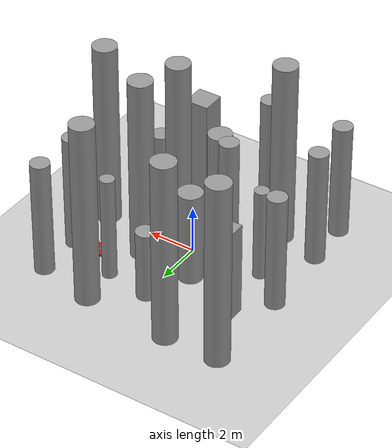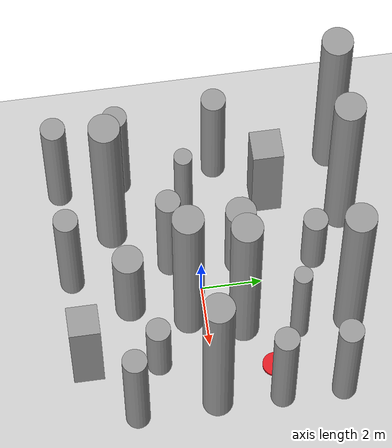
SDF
<sdf version="1.7">
 <world name="default">
  <light name="sun" type="directional">
   <pose>0 0 10 0 -0 0</pose>
   <diffuse>0.8 0.8 0.8 1</diffuse>
   <specular>0.2 0.2 0.2 1</specular>
   <attenuation>
    <range>1000</range>
    <constant>0.9</constant>
    <linear>0.01</linear>
    <quadratic>0.001</quadratic>
   </attenuation>
   <direction>-0.5 0.1 -0.9</direction>
   <spot><inner_angle>0</inner_angle><outer_angle>0</outer_angle><falloff>0</falloff></spot>
  </light>
  <model name="ground_plane">
   <static>1</static>
   <link name="link">
    <collision name="collision">
     <geometry><plane><normal>0 0 1</normal><size>100 100</size></plane></geometry>
     <surface><friction><ode><mu>100</mu><mu2>50</mu2></ode></friction></surface>
    </collision>
    <visual name="visual">
     <cast_shadows>0</cast_shadows>
     <geometry><plane><normal>0 0 1</normal><size>100 100</size></plane></geometry>
     <material>
      <script><uri>file://media/materials/scripts/gazebo.material</uri><name>Gazebo/Grey</name></script>
     </material>
    </visual>
   </link>
  </model>
  <gravity>0 0 -9.8</gravity>
  <magnetic_field>6e-06 2.3e-05 -4.2e-05</magnetic_field>
  <atmosphere type="adiabatic"/>
  <physics type="ode">
   <max_step_size>0.001</max_step_size>
   <real_time_factor>1</real_time_factor>
   <real_time_update_rate>1000</real_time_update_rate>
  </physics>
  <scene><ambient>0.4 0.4 0.4 1</ambient><background>0.7 0.7 0.7 1</background><shadows>1</shadows></scene>
  <audio><device>default</device></audio>
  <spherical_coordinates>
   <surface_model>EARTH_WGS84</surface_model>
   <latitude_deg>0</latitude_deg>
   <longitude_deg>0</longitude_deg>
   <elevation>0</elevation>
   <heading_deg>0</heading_deg>
  </spherical_coordinates>
  <model name="obstalces2">
   <link name="link_11">
    <inertial>
     <mass>1</mass>
     <inertia><ixx>166667</ixx><ixy>0</ixy><ixz>0</ixz><iyy>166667</iyy><iyz>0</iyz><izz>166667</izz></inertia>
    </inertial>
    <pose>-3.03778 2.53975 0 0 -0 0</pose>
    <visual name="visual">
     <geometry><box><size>1 1 4</size></box></geometry>
     <material>
      <lighting>1</lighting>
      <script><uri>file://media/materials/scripts/gazebo.material</uri><name>Gazebo/Grey</name></script>
      <shader type="pixel"><normal_map>__default__</normal_map></shader>
      <ambient>0.3 0.3 0.3 1</ambient>
      <diffuse>0.7 0.7 0.7 1</diffuse>
      <specular>0.01 0.01 0.01 1</specular>
      <emissive>0 0 0 1</emissive>
     </material>
    </visual>
    <collision name="collision">
     <geometry><box><size>1 1 4</size></box></geometry>
     <surface>
      <friction>
       <ode><mu>1</mu><mu2>1</mu2><fdir1>0 0 0</fdir1><slip1>0</slip1><slip2>0</slip2></ode>
       <torsional>
        <coefficient>1</coefficient>
        <patch_radius>0</patch_radius>
        <surface_radius>0</surface_radius>
        <use_patch_radius>1</use_patch_radius>
        <ode><slip>0</slip></ode>
       </torsional>
      </friction>
      <bounce><restitution_coefficient>0</restitution_coefficient><threshold>1e+06</threshold></bounce>
      <contact>
       <collide_without_contact>0</collide_without_contact>
       <collide_without_contact_bitmask>1</collide_without_contact_bitmask>
       <collide_bitmask>1</collide_bitmask>
       <ode>
        <soft_cfm>0</soft_cfm>
        <soft_erp>0.2</soft_erp>
        <kp>1e+13</kp>
        <kd>1</kd>
        <max_vel>0.01</max_vel>
        <min_depth>0</min_depth>
       </ode>
       <bullet>
        <split_impulse>1</split_impulse>
        <split_impulse_penetration_threshold>-0.01</split_impulse_penetration_threshold>
        <soft_cfm>0</soft_cfm>
        <soft_erp>0.2</soft_erp>
        <kp>1e+13</kp>
        <kd>1</kd>
       </bullet>
      </contact>
     </surface>
    </collision>
   </link>
   <link name="link_12">
    <inertial>
     <mass>1</mass>
     <inertia><ixx>145833</ixx><ixy>0</ixy><ixz>0</ixz><iyy>145833</iyy><iyz>0</iyz><izz>125</izz></inertia>
    </inertial>
    <pose>2.64639 -1.73365 0 0 -0 0</pose>
    <visual name="visual">
     <geometry><cylinder><radius>0.4</radius><length>3</length></cylinder></geometry>
     <material>
      <lighting>1</lighting>
      <script><uri>file://media/materials/scripts/gazebo.material</uri><name>Gazebo/Grey</name></script>
      <shader type="pixel"><normal_map>__default__</normal_map></shader>
      <ambient>0.3 0.3 0.3 1</ambient>
      <diffuse>0.7 0.7 0.7 1</diffuse>
      <specular>0.01 0.01 0.01 1</specular>
      <emissive>0 0 0 1</emissive>
     </material>
    </visual>
    <collision name="collision">
     <geometry><cylinder><radius>0.4</radius><length>3</length></cylinder></geometry>
     <surface>
      <friction>
       <ode><mu>1</mu><mu2>1</mu2><fdir1>0 0 0</fdir1><slip1>0</slip1><slip2>0</slip2></ode>
       <torsional>
        <coefficient>1</coefficient>
        <patch_radius>0</patch_radius>
        <surface_radius>0</surface_radius>
        <use_patch_radius>1</use_patch_radius>
        <ode><slip>0</slip></ode>
       </torsional>
      </friction>
      <bounce><restitution_coefficient>0</restitution_coefficient><threshold>1e+06</threshold></bounce>
      <contact>
       <collide_without_contact>0</collide_without_contact>
       <collide_without_contact_bitmask>1</collide_without_contact_bitmask>
       <collide_bitmask>1</collide_bitmask>
       <ode>
        <soft_cfm>0</soft_cfm>
        <soft_erp>0.2</soft_erp>
        <kp>1e+13</kp>
        <kd>1</kd>
        <max_vel>0.01</max_vel>
        <min_depth>0</min_depth>
       </ode>
       <bullet>
        <split_impulse>1</split_impulse>
        <split_impulse_penetration_threshold>-0.01</split_impulse_penetration_threshold>
        <soft_cfm>0</soft_cfm>
        <soft_erp>0.2</soft_erp>
        <kp>1e+13</kp>
        <kd>1</kd>
       </bullet>
      </contact>
     </surface>
    </collision>
   </link>
   <link name="link_14">
    <inertial>
     <mass>1</mass>
     <inertia><ixx>145833</ixx><ixy>0</ixy><ixz>0</ixz><iyy>145833</iyy><iyz>0</iyz><izz>125</izz></inertia>
    </inertial>
    <pose>0.344724 -2.40039 0 0 -0 0</pose>
    <visual name="visual">
     <geometry><cylinder><radius>0.5</radius><length>4</length></cylinder></geometry>
     <material>
      <lighting>1</lighting>
      <script><uri>file://media/materials/scripts/gazebo.material</uri><name>Gazebo/Grey</name></script>
      <shader type="pixel"><normal_map>__default__</normal_map></shader>
      <ambient>0.3 0.3 0.3 1</ambient>
      <diffuse>0.7 0.7 0.7 1</diffuse>
      <specular>0.01 0.01 0.01 1</specular>
      <emissive>0 0 0 1</emissive>
     </material>
    </visual>
    <collision name="collision">
     <geometry><cylinder><radius>0.5</radius><length>4</length></cylinder></geometry>
     <surface>
      <friction>
       <ode><mu>1</mu><mu2>1</mu2><fdir1>0 0 0</fdir1><slip1>0</slip1><slip2>0</slip2></ode>
       <torsional>
        <coefficient>1</coefficient>
        <patch_radius>0</patch_radius>
        <surface_radius>0</surface_radius>
        <use_patch_radius>1</use_patch_radius>
        <ode><slip>0</slip></ode>
       </torsional>
      </friction>
      <bounce><restitution_coefficient>0</restitution_coefficient><threshold>1e+06</threshold></bounce>
      <contact>
       <collide_without_contact>0</collide_without_contact>
       <collide_without_contact_bitmask>1</collide_without_contact_bitmask>
       <collide_bitmask>1</collide_bitmask>
       <ode>
        <soft_cfm>0</soft_cfm>
        <soft_erp>0.2</soft_erp>
        <kp>1e+13</kp>
        <kd>1</kd>
        <max_vel>0.01</max_vel>
        <min_depth>0</min_depth>
       </ode>
       <bullet>
        <split_impulse>1</split_impulse>
        <split_impulse_penetration_threshold>-0.01</split_impulse_penetration_threshold>
        <soft_cfm>0</soft_cfm>
        <soft_erp>0.2</soft_erp>
        <kp>1e+13</kp>
        <kd>1</kd>
       </bullet>
      </contact>
     </surface>
    </collision>
   </link>
   <link name="link_16">
    <inertial>
     <mass>1</mass>
     <inertia><ixx>145833</ixx><ixy>0</ixy><ixz>0</ixz><iyy>145833</iyy><iyz>0</iyz><izz>125</izz></inertia>
    </inertial>
    <pose>-0.815528 1.39211 0 0 -0 0</pose>
    <visual name="visual">
     <geometry><cylinder><radius>0.5</radius><length>4</length></cylinder></geometry>
     <material>
      <lighting>1</lighting>
      <script><uri>file://media/materials/scripts/gazebo.material</uri><name>Gazebo/Grey</name></script>
      <shader type="pixel"><normal_map>__default__</normal_map></shader>
      <ambient>0.3 0.3 0.3 1</ambient>
      <diffuse>0.7 0.7 0.7 1</diffuse>
      <specular>0.01 0.01 0.01 1</specular>
      <emissive>0 0 0 1</emissive>
     </material>
    </visual>
    <collision name="collision">
     <geometry><cylinder><radius>0.5</radius><length>4</length></cylinder></geometry>
     <surface>
      <friction>
       <ode><mu>1</mu><mu2>1</mu2><fdir1>0 0 0</fdir1><slip1>0</slip1><slip2>0</slip2></ode>
       <torsional>
        <coefficient>1</coefficient>
        <patch_radius>0</patch_radius>
        <surface_radius>0</surface_radius>
        <use_patch_radius>1</use_patch_radius>
        <ode><slip>0</slip></ode>
       </torsional>
      </friction>
      <bounce><restitution_coefficient>0</restitution_coefficient><threshold>1e+06</threshold></bounce>
      <contact>
       <collide_without_contact>0</collide_without_contact>
       <collide_without_contact_bitmask>1</collide_without_contact_bitmask>
       <collide_bitmask>1</collide_bitmask>
       <ode>
        <soft_cfm>0</soft_cfm>
        <soft_erp>0.2</soft_erp>
        <kp>1e+13</kp>
        <kd>1</kd>
        <max_vel>0.01</max_vel>
        <min_depth>0</min_depth>
       </ode>
       <bullet>
        <split_impulse>1</split_impulse>
        <split_impulse_penetration_threshold>-0.01</split_impulse_penetration_threshold>
        <soft_cfm>0</soft_cfm>
        <soft_erp>0.2</soft_erp>
        <kp>1e+13</kp>
        <kd>1</kd>
       </bullet>
      </contact>
     </surface>
    </collision>
   </link>
   <link name="link_17">
    <inertial>
     <mass>1</mass>
     <inertia><ixx>145833</ixx><ixy>0</ixy><ixz>0</ixz><iyy>145833</iyy><iyz>0</iyz><izz>125</izz></inertia>
    </inertial>
    <pose>-0.417772 3.76581 0 0 -0 0</pose>
    <visual name="visual">
     <geometry><cylinder><radius>0.4</radius><length>3</length></cylinder></geometry>
     <material>
      <lighting>1</lighting>
      <script><uri>file://media/materials/scripts/gazebo.material</uri><name>Gazebo/Grey</name></script>
      <shader type="pixel"><normal_map>__default__</normal_map></shader>
      <ambient>0.3 0.3 0.3 1</ambient>
      <diffuse>0.7 0.7 0.7 1</diffuse>
      <specular>0.01 0.01 0.01 1</specular>
      <emissive>0 0 0 1</emissive>
     </material>
    </visual>
    <collision name="collision">
     <geometry><cylinder><radius>0.4</radius><length>3</length></cylinder></geometry>
     <surface>
      <friction>
       <ode><mu>1</mu><mu2>1</mu2><fdir1>0 0 0</fdir1><slip1>0</slip1><slip2>0</slip2></ode>
       <torsional>
        <coefficient>1</coefficient>
        <patch_radius>0</patch_radius>
        <surface_radius>0</surface_radius>
        <use_patch_radius>1</use_patch_radius>
        <ode><slip>0</slip></ode>
       </torsional>
      </friction>
      <bounce><restitution_coefficient>0</restitution_coefficient><threshold>1e+06</threshold></bounce>
      <contact>
       <collide_without_contact>0</collide_without_contact>
       <collide_without_contact_bitmask>1</collide_without_contact_bitmask>
       <collide_bitmask>1</collide_bitmask>
       <ode>
        <soft_cfm>0</soft_cfm>
        <soft_erp>0.2</soft_erp>
        <kp>1e+13</kp>
        <kd>1</kd>
        <max_vel>0.01</max_vel>
        <min_depth>0</min_depth>
       </ode>
       <bullet>
        <split_impulse>1</split_impulse>
        <split_impulse_penetration_threshold>-0.01</split_impulse_penetration_threshold>
        <soft_cfm>0</soft_cfm>
        <soft_erp>0.2</soft_erp>
        <kp>1e+13</kp>
        <kd>1</kd>
       </bullet>
      </contact>
     </surface>
    </collision>
   </link>
   <link name="link_18">
    <inertial>
     <mass>1</mass>
     <inertia><ixx>166667</ixx><ixy>0</ixy><ixz>0</ixz><iyy>166667</iyy><iyz>0</iyz><izz>166667</izz></inertia>
    </inertial>
    <pose>2.22537 -4.04815 0 0 -0 0</pose>
    <visual name="visual">
     <geometry><box><size>1 1 4</size></box></geometry>
     <material>
      <lighting>1</lighting>
      <script><uri>file://media/materials/scripts/gazebo.material</uri><name>Gazebo/Grey</name></script>
      <shader type="pixel"><normal_map>__default__</normal_map></shader>
      <ambient>0.3 0.3 0.3 1</ambient>
      <diffuse>0.7 0.7 0.7 1</diffuse>
      <specular>0.01 0.01 0.01 1</specular>
      <emissive>0 0 0 1</emissive>
     </material>
    </visual>
    <collision name="collision">
     <geometry><box><size>1 1 4</size></box></geometry>
     <surface>
      <friction>
       <ode><mu>1</mu><mu2>1</mu2><fdir1>0 0 0</fdir1><slip1>0</slip1><slip2>0</slip2></ode>
       <torsional>
        <coefficient>1</coefficient>
        <patch_radius>0</patch_radius>
        <surface_radius>0</surface_radius>
        <use_patch_radius>1</use_patch_radius>
        <ode><slip>0</slip></ode>
       </torsional>
      </friction>
      <bounce><restitution_coefficient>0</restitution_coefficient><threshold>1e+06</threshold></bounce>
      <contact>
       <collide_without_contact>0</collide_without_contact>
       <collide_without_contact_bitmask>1</collide_without_contact_bitmask>
       <collide_bitmask>1</collide_bitmask>
       <ode>
        <soft_cfm>0</soft_cfm>
        <soft_erp>0.2</soft_erp>
        <kp>1e+13</kp>
        <kd>1</kd>
        <max_vel>0.01</max_vel>
        <min_depth>0</min_depth>
       </ode>
       <bullet>
        <split_impulse>1</split_impulse>
        <split_impulse_penetration_threshold>-0.01</split_impulse_penetration_threshold>
        <soft_cfm>0</soft_cfm>
        <soft_erp>0.2</soft_erp>
        <kp>1e+13</kp>
        <kd>1</kd>
       </bullet>
      </contact>
     </surface>
    </collision>
   </link>
   <link name="link_3">
    <inertial>
     <mass>1</mass>
     <inertia><ixx>145833</ixx><ixy>0</ixy><ixz>0</ixz><iyy>145833</iyy><iyz>0</iyz><izz>125</izz></inertia>
    </inertial>
    <pose>-2.97254 -0.183383 0 0 -0 0</pose>
    <visual name="visual">
     <geometry><cylinder><radius>0.3</radius><length>4</length></cylinder></geometry>
     <material>
      <lighting>1</lighting>
      <script><uri>file://media/materials/scripts/gazebo.material</uri><name>Gazebo/Grey</name></script>
      <shader type="pixel"><normal_map>__default__</normal_map></shader>
      <ambient>0.3 0.3 0.3 1</ambient>
      <diffuse>0.7 0.7 0.7 1</diffuse>
      <specular>0.01 0.01 0.01 1</specular>
      <emissive>0 0 0 1</emissive>
     </material>
    </visual>
    <collision name="collision">
     <geometry><cylinder><radius>0.3</radius><length>4</length></cylinder></geometry>
     <surface>
      <friction>
       <ode><mu>1</mu><mu2>1</mu2><fdir1>0 0 0</fdir1><slip1>0</slip1><slip2>0</slip2></ode>
       <torsional>
        <coefficient>1</coefficient>
        <patch_radius>0</patch_radius>
        <surface_radius>0</surface_radius>
        <use_patch_radius>1</use_patch_radius>
        <ode><slip>0</slip></ode>
       </torsional>
      </friction>
      <bounce><restitution_coefficient>0</restitution_coefficient><threshold>1e+06</threshold></bounce>
      <contact>
       <collide_without_contact>0</collide_without_contact>
       <collide_without_contact_bitmask>1</collide_without_contact_bitmask>
       <collide_bitmask>1</collide_bitmask>
       <ode>
        <soft_cfm>0</soft_cfm>
        <soft_erp>0.2</soft_erp>
        <kp>1e+13</kp>
        <kd>1</kd>
        <max_vel>0.01</max_vel>
        <min_depth>0</min_depth>
       </ode>
       <bullet>
        <split_impulse>1</split_impulse>
        <split_impulse_penetration_threshold>-0.01</split_impulse_penetration_threshold>
        <soft_cfm>0</soft_cfm>
        <soft_erp>0.2</soft_erp>
        <kp>1e+13</kp>
        <kd>1</kd>
       </bullet>
      </contact>
     </surface>
    </collision>
   </link>
   <link name="link_6">
    <inertial>
     <mass>1</mass>
     <inertia><ixx>145833</ixx><ixy>0</ixy><ixz>0</ixz><iyy>145833</iyy><iyz>0</iyz><izz>125</izz></inertia>
    </inertial>
    <pose>1.8493 2.9833 0 0 -0 0</pose>
    <visual name="visual">
     <geometry><cylinder><radius>0.3</radius><length>5</length></cylinder></geometry>
     <material>
      <lighting>1</lighting>
      <script><uri>file://media/materials/scripts/gazebo.material</uri><name>Gazebo/Grey</name></script>
      <shader type="pixel"><normal_map>__default__</normal_map></shader>
      <ambient>0.3 0.3 0.3 1</ambient>
      <diffuse>0.7 0.7 0.7 1</diffuse>
      <specular>0.01 0.01 0.01 1</specular>
      <emissive>0 0 0 1</emissive>
     </material>
    </visual>
    <collision name="collision">
     <geometry><cylinder><radius>0.3</radius><length>5</length></cylinder></geometry>
     <surface>
      <friction>
       <ode><mu>1</mu><mu2>1</mu2><fdir1>0 0 0</fdir1><slip1>0</slip1><slip2>0</slip2></ode>
       <torsional>
        <coefficient>1</coefficient>
        <patch_radius>0</patch_radius>
        <surface_radius>0</surface_radius>
        <use_patch_radius>1</use_patch_radius>
        <ode><slip>0</slip></ode>
       </torsional>
      </friction>
      <bounce><restitution_coefficient>0</restitution_coefficient><threshold>1e+06</threshold></bounce>
      <contact>
       <collide_without_contact>0</collide_without_contact>
       <collide_without_contact_bitmask>1</collide_without_contact_bitmask>
       <collide_bitmask>1</collide_bitmask>
       <ode>
        <soft_cfm>0</soft_cfm>
        <soft_erp>0.2</soft_erp>
        <kp>1e+13</kp>
        <kd>1</kd>
        <max_vel>0.01</max_vel>
        <min_depth>0</min_depth>
       </ode>
       <bullet>
        <split_impulse>1</split_impulse>
        <split_impulse_penetration_threshold>-0.01</split_impulse_penetration_threshold>
        <soft_cfm>0</soft_cfm>
        <soft_erp>0.2</soft_erp>
        <kp>1e+13</kp>
        <kd>1</kd>
       </bullet>
      </contact>
     </surface>
    </collision>
   </link>
   <static>0</static>
   <pose>-6e-06 -0 2.00002 -1e-06 -4e-06 0</pose>
  </model>
  <model name="unit_cylinder">
   <link name="link">
    <inertial>
     <mass>10</mass>
     <inertia><ixx>21.2333</ixx><ixy>0</ixy><ixz>0</ixz><iyy>21.2333</iyy><iyz>0</iyz><izz>0.8</izz></inertia>
    </inertial>
    <visual name="visual">
     <geometry><cylinder><radius>0.4</radius><length>5</length></cylinder></geometry>
     <material>
      <script><name>Gazebo/Grey</name><uri>file://media/materials/scripts/gazebo.material</uri></script>
      <shader type="pixel"><normal_map>__default__</normal_map></shader>
      <ambient>0.3 0.3 0.3 1</ambient>
      <diffuse>0.7 0.7 0.7 1</diffuse>
      <specular>0.01 0.01 0.01 1</specular>
      <emissive>0 0 0 1</emissive>
     </material>
    </visual>
    <collision name="collision">
     <geometry><cylinder><radius>0.4</radius><length>5</length></cylinder></geometry>
     <surface>
      <friction>
       <ode><mu>1</mu><mu2>1</mu2><fdir1>0 0 0</fdir1><slip1>0</slip1><slip2>0</slip2></ode>
       <torsional>
        <coefficient>1</coefficient>
        <patch_radius>0</patch_radius>
        <surface_radius>0</surface_radius>
        <use_patch_radius>1</use_patch_radius>
        <ode><slip>0</slip></ode>
       </torsional>
      </friction>
      <bounce><restitution_coefficient>0</restitution_coefficient><threshold>1e+06</threshold></bounce>
      <contact>
       <collide_without_contact>0</collide_without_contact>
       <collide_without_contact_bitmask>1</collide_without_contact_bitmask>
       <collide_bitmask>1</collide_bitmask>
       <ode>
        <soft_cfm>0</soft_cfm>
        <soft_erp>0.2</soft_erp>
        <kp>1e+13</kp>
        <kd>1</kd>
        <max_vel>0.01</max_vel>
        <min_depth>0</min_depth>
       </ode>
       <bullet>
        <split_impulse>1</split_impulse>
        <split_impulse_penetration_threshold>-0.01</split_impulse_penetration_threshold>
        <soft_cfm>0</soft_cfm>
        <soft_erp>0.2</soft_erp>
        <kp>1e+13</kp>
        <kd>1</kd>
       </bullet>
      </contact>
     </surface>
    </collision>
   </link>
   <static>0</static>
   <pose>-1.02275 -0.918032 2.49999 0 -0 1e-06</pose>
  </model>
  <model name="unit_cylinder_1">
   <link name="link">
    <inertial>
     <mass>10</mass>
     <inertia><ixx>21.2333</ixx><ixy>0</ixy><ixz>0</ixz><iyy>21.2333</iyy><iyz>0</iyz><izz>0.8</izz></inertia>
    </inertial>
    <visual name="visual">
     <geometry><cylinder><radius>0.4</radius><length>5</length></cylinder></geometry>
     <material>
      <script><name>Gazebo/Grey</name><uri>file://media/materials/scripts/gazebo.material</uri></script>
      <shader type="pixel"><normal_map>__default__</normal_map></shader>
      <ambient>0.3 0.3 0.3 1</ambient>
      <diffuse>0.7 0.7 0.7 1</diffuse>
      <specular>0.01 0.01 0.01 1</specular>
      <emissive>0 0 0 1</emissive>
     </material>
    </visual>
    <collision name="collision">
     <geometry><cylinder><radius>0.4</radius><length>5</length></cylinder></geometry>
     <surface>
      <friction>
       <ode><mu>1</mu><mu2>1</mu2><fdir1>0 0 0</fdir1><slip1>0</slip1><slip2>0</slip2></ode>
       <torsional>
        <coefficient>1</coefficient>
        <patch_radius>0</patch_radius>
        <surface_radius>0</surface_radius>
        <use_patch_radius>1</use_patch_radius>
        <ode><slip>0</slip></ode>
       </torsional>
      </friction>
      <bounce><restitution_coefficient>0</restitution_coefficient><threshold>1e+06</threshold></bounce>
      <contact>
       <collide_without_contact>0</collide_without_contact>
       <collide_without_contact_bitmask>1</collide_without_contact_bitmask>
       <collide_bitmask>1</collide_bitmask>
       <ode>
        <soft_cfm>0</soft_cfm>
        <soft_erp>0.2</soft_erp>
        <kp>1e+13</kp>
        <kd>1</kd>
        <max_vel>0.01</max_vel>
        <min_depth>0</min_depth>
       </ode>
       <bullet>
        <split_impulse>1</split_impulse>
        <split_impulse_penetration_threshold>-0.01</split_impulse_penetration_threshold>
        <soft_cfm>0</soft_cfm>
        <soft_erp>0.2</soft_erp>
        <kp>1e+13</kp>
        <kd>1</kd>
       </bullet>
      </contact>
     </surface>
    </collision>
   </link>
   <static>0</static>
   <pose>-4.173 -2.22878 2.49999 0 -0 1e-06</pose>
  </model>
  <model name="unit_cylinder_2">
   <link name="link">
    <inertial>
     <mass>10</mass>
     <inertia><ixx>21.2333</ixx><ixy>0</ixy><ixz>0</ixz><iyy>21.2333</iyy><iyz>0</iyz><izz>0.8</izz></inertia>
    </inertial>
    <visual name="visual">
     <geometry><cylinder><radius>0.4</radius><length>5</length></cylinder></geometry>
     <material>
      <script><name>Gazebo/Grey</name><uri>file://media/materials/scripts/gazebo.material</uri></script>
      <shader type="pixel"><normal_map>__default__</normal_map></shader>
      <ambient>0.3 0.3 0.3 1</ambient>
      <diffuse>0.7 0.7 0.7 1</diffuse>
      <specular>0.01 0.01 0.01 1</specular>
      <emissive>0 0 0 1</emissive>
     </material>
    </visual>
    <collision name="collision">
     <geometry><cylinder><radius>0.4</radius><length>5</length></cylinder></geometry>
     <surface>
      <friction>
       <ode><mu>1</mu><mu2>1</mu2><fdir1>0 0 0</fdir1><slip1>0</slip1><slip2>0</slip2></ode>
       <torsional>
        <coefficient>1</coefficient>
        <patch_radius>0</patch_radius>
        <surface_radius>0</surface_radius>
        <use_patch_radius>1</use_patch_radius>
        <ode><slip>0</slip></ode>
       </torsional>
      </friction>
      <bounce><restitution_coefficient>0</restitution_coefficient><threshold>1e+06</threshold></bounce>
      <contact>
       <collide_without_contact>0</collide_without_contact>
       <collide_without_contact_bitmask>1</collide_without_contact_bitmask>
       <collide_bitmask>1</collide_bitmask>
       <ode>
        <soft_cfm>0</soft_cfm>
        <soft_erp>0.2</soft_erp>
        <kp>1e+13</kp>
        <kd>1</kd>
        <max_vel>0.01</max_vel>
        <min_depth>0</min_depth>
       </ode>
       <bullet>
        <split_impulse>1</split_impulse>
        <split_impulse_penetration_threshold>-0.01</split_impulse_penetration_threshold>
        <soft_cfm>0</soft_cfm>
        <soft_erp>0.2</soft_erp>
        <kp>1e+13</kp>
        <kd>1</kd>
       </bullet>
      </contact>
     </surface>
    </collision>
   </link>
   <static>0</static>
   <pose>-4.03193 -4.22866 2.49999 0 -0 1e-06</pose>
  </model>
  <model name="unit_cylinder_0">
   <link name="link">
    <inertial>
     <mass>10</mass>
     <inertia><ixx>21.2333</ixx><ixy>0</ixy><ixz>0</ixz><iyy>21.2333</iyy><iyz>0</iyz><izz>0.8</izz></inertia>
    </inertial>
    <visual name="visual">
     <geometry><cylinder><radius>0.4</radius><length>5</length></cylinder></geometry>
     <material>
      <script><name>Gazebo/Grey</name><uri>file://media/materials/scripts/gazebo.material</uri></script>
      <shader type="pixel"><normal_map>__default__</normal_map></shader>
      <ambient>0.3 0.3 0.3 1</ambient>
      <diffuse>0.7 0.7 0.7 1</diffuse>
      <specular>0.01 0.01 0.01 1</specular>
      <emissive>0 0 0 1</emissive>
     </material>
    </visual>
    <collision name="collision">
     <geometry><cylinder><radius>0.4</radius><length>5</length></cylinder></geometry>
     <surface>
      <friction>
       <ode><mu>1</mu><mu2>1</mu2><fdir1>0 0 0</fdir1><slip1>0</slip1><slip2>0</slip2></ode>
       <torsional>
        <coefficient>1</coefficient>
        <patch_radius>0</patch_radius>
        <surface_radius>0</surface_radius>
        <use_patch_radius>1</use_patch_radius>
        <ode><slip>0</slip></ode>
       </torsional>
      </friction>
      <bounce><restitution_coefficient>0</restitution_coefficient><threshold>1e+06</threshold></bounce>
      <contact>
       <collide_without_contact>0</collide_without_contact>
       <collide_without_contact_bitmask>1</collide_without_contact_bitmask>
       <collide_bitmask>1</collide_bitmask>
       <ode>
        <soft_cfm>0</soft_cfm>
        <soft_erp>0.2</soft_erp>
        <kp>1e+13</kp>
        <kd>1</kd>
        <max_vel>0.01</max_vel>
        <min_depth>0</min_depth>
       </ode>
       <bullet>
        <split_impulse>1</split_impulse>
        <split_impulse_penetration_threshold>-0.01</split_impulse_penetration_threshold>
        <soft_cfm>0</soft_cfm>
        <soft_erp>0.2</soft_erp>
        <kp>1e+13</kp>
        <kd>1</kd>
       </bullet>
      </contact>
     </surface>
    </collision>
   </link>
   <static>0</static>
   <pose>-0.805813 -4.1954 2.49999 0 -0 1e-06</pose>
  </model>
  <model name="unit_cylinder_3">
   <link name="link">
    <inertial>
     <mass>10</mass>
     <inertia><ixx>21.2333</ixx><ixy>0</ixy><ixz>0</ixz><iyy>21.2333</iyy><iyz>0</iyz><izz>0.8</izz></inertia>
    </inertial>
    <visual name="visual">
     <geometry><cylinder><radius>0.4</radius><length>5</length></cylinder></geometry>
     <material>
      <script><name>Gazebo/Grey</name><uri>file://media/materials/scripts/gazebo.material</uri></script>
      <shader type="pixel"><normal_map>__default__</normal_map></shader>
      <ambient>0.3 0.3 0.3 1</ambient>
      <diffuse>0.7 0.7 0.7 1</diffuse>
      <specular>0.01 0.01 0.01 1</specular>
      <emissive>0 0 0 1</emissive>
     </material>
    </visual>
    <collision name="collision">
     <geometry><cylinder><radius>0.4</radius><length>5</length></cylinder></geometry>
     <surface>
      <friction>
       <ode><mu>1</mu><mu2>1</mu2><fdir1>0 0 0</fdir1><slip1>0</slip1><slip2>0</slip2></ode>
       <torsional>
        <coefficient>1</coefficient>
        <patch_radius>0</patch_radius>
        <surface_radius>0</surface_radius>
        <use_patch_radius>1</use_patch_radius>
        <ode><slip>0</slip></ode>
       </torsional>
      </friction>
      <bounce><restitution_coefficient>0</restitution_coefficient><threshold>1e+06</threshold></bounce>
      <contact>
       <collide_without_contact>0</collide_without_contact>
       <collide_without_contact_bitmask>1</collide_without_contact_bitmask>
       <collide_bitmask>1</collide_bitmask>
       <ode>
        <soft_cfm>0</soft_cfm>
        <soft_erp>0.2</soft_erp>
        <kp>1e+13</kp>
        <kd>1</kd>
        <max_vel>0.01</max_vel>
        <min_depth>0</min_depth>
       </ode>
       <bullet>
        <split_impulse>1</split_impulse>
        <split_impulse_penetration_threshold>-0.01</split_impulse_penetration_threshold>
        <soft_cfm>0</soft_cfm>
        <soft_erp>0.2</soft_erp>
        <kp>1e+13</kp>
        <kd>1</kd>
       </bullet>
      </contact>
     </surface>
    </collision>
   </link>
   <static>0</static>
   <pose>-4.3678 0.992379 2.49999 0 -0 1e-06</pose>
  </model>
  <model name="unit_cylinder_4">
   <link name="link">
    <inertial>
     <mass>10</mass>
     <inertia><ixx>21.2333</ixx><ixy>0</ixy><ixz>0</ixz><iyy>21.2333</iyy><iyz>0</iyz><izz>0.8</izz></inertia>
    </inertial>
    <visual name="visual">
     <geometry><cylinder><radius>0.4</radius><length>5</length></cylinder></geometry>
     <material>
      <script><name>Gazebo/Grey</name><uri>file://media/materials/scripts/gazebo.material</uri></script>
      <shader type="pixel"><normal_map>__default__</normal_map></shader>
      <ambient>0.3 0.3 0.3 1</ambient>
      <diffuse>0.7 0.7 0.7 1</diffuse>
      <specular>0.01 0.01 0.01 1</specular>
      <emissive>0 0 0 1</emissive>
     </material>
    </visual>
    <collision name="collision">
     <geometry><cylinder><radius>0.4</radius><length>5</length></cylinder></geometry>
     <surface>
      <friction>
       <ode><mu>1</mu><mu2>1</mu2><fdir1>0 0 0</fdir1><slip1>0</slip1><slip2>0</slip2></ode>
       <torsional>
        <coefficient>1</coefficient>
        <patch_radius>0</patch_radius>
        <surface_radius>0</surface_radius>
        <use_patch_radius>1</use_patch_radius>
        <ode><slip>0</slip></ode>
       </torsional>
      </friction>
      <bounce><restitution_coefficient>0</restitution_coefficient><threshold>1e+06</threshold></bounce>
      <contact>
       <collide_without_contact>0</collide_without_contact>
       <collide_without_contact_bitmask>1</collide_without_contact_bitmask>
       <collide_bitmask>1</collide_bitmask>
       <ode>
        <soft_cfm>0</soft_cfm>
        <soft_erp>0.2</soft_erp>
        <kp>1e+13</kp>
        <kd>1</kd>
        <max_vel>0.01</max_vel>
        <min_depth>0</min_depth>
       </ode>
       <bullet>
        <split_impulse>1</split_impulse>
        <split_impulse_penetration_threshold>-0.01</split_impulse_penetration_threshold>
        <soft_cfm>0</soft_cfm>
        <soft_erp>0.2</soft_erp>
        <kp>1e+13</kp>
        <kd>1</kd>
       </bullet>
      </contact>
     </surface>
    </collision>
   </link>
   <static>0</static>
   <pose>4.09815 2.10728 2.49999 0 -0 1e-06</pose>
  </model>
  <model name="unit_cylinder_5">
   <link name="link">
    <inertial>
     <mass>10</mass>
     <inertia><ixx>21.2333</ixx><ixy>0</ixy><ixz>0</ixz><iyy>21.2333</iyy><iyz>0</iyz><izz>0.8</izz></inertia>
    </inertial>
    <visual name="visual">
     <geometry><cylinder><radius>0.4</radius><length>5</length></cylinder></geometry>
     <material>
      <script><name>Gazebo/Grey</name><uri>file://media/materials/scripts/gazebo.material</uri></script>
      <shader type="pixel"><normal_map>__default__</normal_map></shader>
      <ambient>0.3 0.3 0.3 1</ambient>
      <diffuse>0.7 0.7 0.7 1</diffuse>
      <specular>0.01 0.01 0.01 1</specular>
      <emissive>0 0 0 1</emissive>
     </material>
    </visual>
    <collision name="collision">
     <geometry><cylinder><radius>0.4</radius><length>5</length></cylinder></geometry>
     <surface>
      <friction>
       <ode><mu>1</mu><mu2>1</mu2><fdir1>0 0 0</fdir1><slip1>0</slip1><slip2>0</slip2></ode>
       <torsional>
        <coefficient>1</coefficient>
        <patch_radius>0</patch_radius>
        <surface_radius>0</surface_radius>
        <use_patch_radius>1</use_patch_radius>
        <ode><slip>0</slip></ode>
       </torsional>
      </friction>
      <bounce><restitution_coefficient>0</restitution_coefficient><threshold>1e+06</threshold></bounce>
      <contact>
       <collide_without_contact>0</collide_without_contact>
       <collide_without_contact_bitmask>1</collide_without_contact_bitmask>
       <collide_bitmask>1</collide_bitmask>
       <ode>
        <soft_cfm>0</soft_cfm>
        <soft_erp>0.2</soft_erp>
        <kp>1e+13</kp>
        <kd>1</kd>
        <max_vel>0.01</max_vel>
        <min_depth>0</min_depth>
       </ode>
       <bullet>
        <split_impulse>1</split_impulse>
        <split_impulse_penetration_threshold>-0.01</split_impulse_penetration_threshold>
        <soft_cfm>0</soft_cfm>
        <soft_erp>0.2</soft_erp>
        <kp>1e+13</kp>
        <kd>1</kd>
       </bullet>
      </contact>
     </surface>
    </collision>
   </link>
   <static>0</static>
   <pose>4.10534 4.11836 2.49999 0 -0 1e-06</pose>
  </model>
  <model name="unit_cylinder_6">
   <link name="link">
    <inertial>
     <mass>10</mass>
     <inertia><ixx>21.2333</ixx><ixy>0</ixy><ixz>0</ixz><iyy>21.2333</iyy><iyz>0</iyz><izz>0.8</izz></inertia>
    </inertial>
    <visual name="visual">
     <geometry><cylinder><radius>0.4</radius><length>5</length></cylinder></geometry>
     <material>
      <script><name>Gazebo/Grey</name><uri>file://media/materials/scripts/gazebo.material</uri></script>
      <shader type="pixel"><normal_map>__default__</normal_map></shader>
      <ambient>0.3 0.3 0.3 1</ambient>
      <diffuse>0.7 0.7 0.7 1</diffuse>
      <specular>0.01 0.01 0.01 1</specular>
      <emissive>0 0 0 1</emissive>
     </material>
    </visual>
    <collision name="collision">
     <geometry><cylinder><radius>0.4</radius><length>5</length></cylinder></geometry>
     <surface>
      <friction>
       <ode><mu>1</mu><mu2>1</mu2><fdir1>0 0 0</fdir1><slip1>0</slip1><slip2>0</slip2></ode>
       <torsional>
        <coefficient>1</coefficient>
        <patch_radius>0</patch_radius>
        <surface_radius>0</surface_radius>
        <use_patch_radius>1</use_patch_radius>
        <ode><slip>0</slip></ode>
       </torsional>
      </friction>
      <bounce><restitution_coefficient>0</restitution_coefficient><threshold>1e+06</threshold></bounce>
      <contact>
       <collide_without_contact>0</collide_without_contact>
       <collide_without_contact_bitmask>1</collide_without_contact_bitmask>
       <collide_bitmask>1</collide_bitmask>
       <ode>
        <soft_cfm>0</soft_cfm>
        <soft_erp>0.2</soft_erp>
        <kp>1e+13</kp>
        <kd>1</kd>
        <max_vel>0.01</max_vel>
        <min_depth>0</min_depth>
       </ode>
       <bullet>
        <split_impulse>1</split_impulse>
        <split_impulse_penetration_threshold>-0.01</split_impulse_penetration_threshold>
        <soft_cfm>0</soft_cfm>
        <soft_erp>0.2</soft_erp>
        <kp>1e+13</kp>
        <kd>1</kd>
       </bullet>
      </contact>
     </surface>
    </collision>
   </link>
   <static>0</static>
   <pose>4.17748 -2.64174 2.49999 0 -0 1e-06</pose>
  </model>
  <model name="conc">
   <link name="link_0">
    <inertial>
     <mass>1</mass>
     <inertia><ixx>0.145833</ixx><ixy>0</ixy><ixz>0</ixz><iyy>0.145833</iyy><iyz>0</iyz><izz>0.125</izz></inertia>
    </inertial>
    <visual name="visual">
     <geometry><cylinder><radius>0.4</radius><length>0.1</length></cylinder></geometry>
     <material>
      <lighting>1</lighting>
      <script><uri>file://media/materials/scripts/gazebo.material</uri><name>Gazebo/Grey</name></script>
      <shader type="pixel"><normal_map>__default__</normal_map></shader>
      <ambient>0.753 0.11 0.157 1</ambient>
      <diffuse>0.878 0.106 0.141 1</diffuse>
      <specular>0.01 0.01 0.01 1</specular>
      <emissive>0 0 0 1</emissive>
     </material>
    </visual>
    <collision name="collision">
     <geometry><cylinder><radius>0.4</radius><length>0.1</length></cylinder></geometry>
     <surface>
      <friction>
       <ode><mu>1</mu><mu2>1</mu2><fdir1>0 0 0</fdir1><slip1>0</slip1><slip2>0</slip2></ode>
       <torsional>
        <coefficient>1</coefficient>
        <patch_radius>0</patch_radius>
        <surface_radius>0</surface_radius>
        <use_patch_radius>1</use_patch_radius>
        <ode><slip>0</slip></ode>
       </torsional>
      </friction>
      <bounce><restitution_coefficient>0</restitution_coefficient><threshold>1e+06</threshold></bounce>
      <contact>
       <collide_without_contact>0</collide_without_contact>
       <collide_without_contact_bitmask>1</collide_without_contact_bitmask>
       <collide_bitmask>1</collide_bitmask>
       <ode>
        <soft_cfm>0</soft_cfm>
        <soft_erp>0.2</soft_erp>
        <kp>1e+13</kp>
        <kd>1</kd>
        <max_vel>0.01</max_vel>
        <min_depth>0</min_depth>
       </ode>
       <bullet>
        <split_impulse>1</split_impulse>
        <split_impulse_penetration_threshold>-0.01</split_impulse_penetration_threshold>
        <soft_cfm>0</soft_cfm>
        <soft_erp>0.2</soft_erp>
        <kp>1e+13</kp>
        <kd>1</kd>
       </bullet>
      </contact>
     </surface>
    </collision>
   </link>
   <link name="link_1">
    <inertial>
     <mass>1</mass>
     <inertia><ixx>0.145833</ixx><ixy>0</ixy><ixz>0</ixz><iyy>0.145833</iyy><iyz>0</iyz><izz>0.125</izz></inertia>
    </inertial>
    <pose>-0 0 0.05 0 -0 0</pose>
    <visual name="visual">
     <geometry><cylinder><radius>0.05</radius><length>0.001</length></cylinder></geometry>
     <material>
      <lighting>1</lighting>
      <script><uri>file://media/materials/scripts/gazebo.material</uri><name>Gazebo/Grey</name></script>
      <shader type="pixel"><normal_map>__default__</normal_map></shader>
      <ambient>0.149 0.635 0.412 1</ambient>
      <diffuse>0.2 0.82 0.478 1</diffuse>
      <specular>0.01 0.01 0.01 1</specular>
      <emissive>0 0 0 1</emissive>
     </material>
    </visual>
    <collision name="collision">
     <geometry><cylinder><radius>0.05</radius><length>0.001</length></cylinder></geometry>
     <surface>
      <friction>
       <ode><mu>1</mu><mu2>1</mu2><fdir1>0 0 0</fdir1><slip1>0</slip1><slip2>0</slip2></ode>
       <torsional>
        <coefficient>1</coefficient>
        <patch_radius>0</patch_radius>
        <surface_radius>0</surface_radius>
        <use_patch_radius>1</use_patch_radius>
        <ode><slip>0</slip></ode>
       </torsional>
      </friction>
      <bounce><restitution_coefficient>0</restitution_coefficient><threshold>1e+06</threshold></bounce>
      <contact>
       <collide_without_contact>0</collide_without_contact>
       <collide_without_contact_bitmask>1</collide_without_contact_bitmask>
       <collide_bitmask>1</collide_bitmask>
       <ode>
        <soft_cfm>0</soft_cfm>
        <soft_erp>0.2</soft_erp>
        <kp>1e+13</kp>
        <kd>1</kd>
        <max_vel>0.01</max_vel>
        <min_depth>0</min_depth>
       </ode>
       <bullet>
        <split_impulse>1</split_impulse>
        <split_impulse_penetration_threshold>-0.01</split_impulse_penetration_threshold>
        <soft_cfm>0</soft_cfm>
        <soft_erp>0.2</soft_erp>
        <kp>1e+13</kp>
        <kd>1</kd>
       </bullet>
      </contact>
     </surface>
    </collision>
   </link>
   <static>0</static>
   <joint name="joint" type="fixed">
    <parent>link_0</parent>
    <child>conc::link_1</child>
    <pose>0 0 0.1 0 -0 0</pose>
    <axis><xyz>0 0 1</xyz><limit><lower>-1e+16</lower><upper>1e+16</upper></limit></axis>
   </joint>
   <pose>3 2 0.049999 0 -0 0</pose>
  </model>
  <model name="unit_cylinder_7">
   <link name="link">
    <inertial>
     <mass>100</mass>
     <inertia><ixx>14.5833</ixx><ixy>0</ixy><ixz>0</ixz><iyy>14.5833</iyy><iyz>0</iyz><izz>12.5</izz></inertia>
    </inertial>
    <visual name="visual">
     <geometry><cylinder><radius>0.5</radius><length>8</length></cylinder></geometry>
     <material>
      <script><name>Gazebo/Grey</name><uri>file://media/materials/scripts/gazebo.material</uri></script>
      <shader type="pixel"><normal_map>__default__</normal_map></shader>
      <ambient>0.3 0.3 0.3 1</ambient>
      <diffuse>0.7 0.7 0.7 1</diffuse>
      <specular>0.01 0.01 0.01 1</specular>
      <emissive>0 0 0 1</emissive>
     </material>
    </visual>
    <collision name="collision">
     <geometry><cylinder><radius>0.5</radius><length>8</length></cylinder></geometry>
     <surface>
      <friction>
       <ode><mu>1</mu><mu2>1</mu2><fdir1>0 0 0</fdir1><slip1>0</slip1><slip2>0</slip2></ode>
       <torsional>
        <coefficient>1</coefficient>
        <patch_radius>0</patch_radius>
        <surface_radius>0</surface_radius>
        <use_patch_radius>1</use_patch_radius>
        <ode><slip>0</slip></ode>
       </torsional>
      </friction>
      <bounce><restitution_coefficient>0</restitution_coefficient><threshold>1e+06</threshold></bounce>
      <contact>
       <collide_without_contact>0</collide_without_contact>
       <collide_without_contact_bitmask>1</collide_without_contact_bitmask>
       <collide_bitmask>1</collide_bitmask>
       <ode>
        <soft_cfm>0</soft_cfm>
        <soft_erp>0.2</soft_erp>
        <kp>1e+13</kp>
        <kd>1</kd>
        <max_vel>0.01</max_vel>
        <min_depth>0</min_depth>
       </ode>
       <bullet>
        <split_impulse>1</split_impulse>
        <split_impulse_penetration_threshold>-0.01</split_impulse_penetration_threshold>
        <soft_cfm>0</soft_cfm>
        <soft_erp>0.2</soft_erp>
        <kp>1e+13</kp>
        <kd>1</kd>
       </bullet>
      </contact>
     </surface>
    </collision>
   </link>
   <static>0</static>
   <pose>1.54348 1.19149 4 0 -0 -0.001161</pose>
  </model>
  <model name="unit_cylinder_7_clone">
   <link name="link">
    <inertial>
     <mass>100</mass>
     <inertia><ixx>14.5833</ixx><ixy>0</ixy><ixz>0</ixz><iyy>14.5833</iyy><iyz>0</iyz><izz>12.5</izz></inertia>
    </inertial>
    <visual name="visual">
     <geometry><cylinder><radius>0.5</radius><length>8</length></cylinder></geometry>
     <material>
      <script><name>Gazebo/Grey</name><uri>file://media/materials/scripts/gazebo.material</uri></script>
      <shader type="pixel"><normal_map>__default__</normal_map></shader>
      <ambient>0.3 0.3 0.3 1</ambient>
      <diffuse>0.7 0.7 0.7 1</diffuse>
      <specular>0.01 0.01 0.01 1</specular>
      <emissive>0 0 0 1</emissive>
     </material>
    </visual>
    <collision name="collision">
     <geometry><cylinder><radius>0.5</radius><length>8</length></cylinder></geometry>
     <surface>
      <friction>
       <ode><mu>1</mu><mu2>1</mu2><fdir1>0 0 0</fdir1><slip1>0</slip1><slip2>0</slip2></ode>
       <torsional>
        <coefficient>1</coefficient>
        <patch_radius>0</patch_radius>
        <surface_radius>0</surface_radius>
        <use_patch_radius>1</use_patch_radius>
        <ode><slip>0</slip></ode>
       </torsional>
      </friction>
      <bounce><restitution_coefficient>0</restitution_coefficient><threshold>1e+06</threshold></bounce>
      <contact>
       <collide_without_contact>0</collide_without_contact>
       <collide_without_contact_bitmask>1</collide_without_contact_bitmask>
       <collide_bitmask>1</collide_bitmask>
       <ode>
        <soft_cfm>0</soft_cfm>
        <soft_erp>0.2</soft_erp>
        <kp>1e+13</kp>
        <kd>1</kd>
        <max_vel>0.01</max_vel>
        <min_depth>0</min_depth>
       </ode>
       <bullet>
        <split_impulse>1</split_impulse>
        <split_impulse_penetration_threshold>-0.01</split_impulse_penetration_threshold>
        <soft_cfm>0</soft_cfm>
        <soft_erp>0.2</soft_erp>
        <kp>1e+13</kp>
        <kd>1</kd>
       </bullet>
      </contact>
     </surface>
    </collision>
   </link>
   <static>0</static>
   <pose>4.0118 -0.017143 3.99999 0 -0 -0.001064</pose>
  </model>
  <model name="unit_cylinder_7_clone_0">
   <link name="link">
    <inertial>
     <mass>100</mass>
     <inertia><ixx>14.5833</ixx><ixy>0</ixy><ixz>0</ixz><iyy>14.5833</iyy><iyz>0</iyz><izz>12.5</izz></inertia>
    </inertial>
    <visual name="visual">
     <geometry><cylinder><radius>0.5</radius><length>8</length></cylinder></geometry>
     <material>
      <script><name>Gazebo/Grey</name><uri>file://media/materials/scripts/gazebo.material</uri></script>
      <shader type="pixel"><normal_map>__default__</normal_map></shader>
      <ambient>0.3 0.3 0.3 1</ambient>
      <diffuse>0.7 0.7 0.7 1</diffuse>
      <specular>0.01 0.01 0.01 1</specular>
      <emissive>0 0 0 1</emissive>
     </material>
    </visual>
    <collision name="collision">
     <geometry><cylinder><radius>0.5</radius><length>8</length></cylinder></geometry>
     <surface>
      <friction>
       <ode><mu>1</mu><mu2>1</mu2><fdir1>0 0 0</fdir1><slip1>0</slip1><slip2>0</slip2></ode>
       <torsional>
        <coefficient>1</coefficient>
        <patch_radius>0</patch_radius>
        <surface_radius>0</surface_radius>
        <use_patch_radius>1</use_patch_radius>
        <ode><slip>0</slip></ode>
       </torsional>
      </friction>
      <bounce><restitution_coefficient>0</restitution_coefficient><threshold>1e+06</threshold></bounce>
      <contact>
       <collide_without_contact>0</collide_without_contact>
       <collide_without_contact_bitmask>1</collide_without_contact_bitmask>
       <collide_bitmask>1</collide_bitmask>
       <ode>
        <soft_cfm>0</soft_cfm>
        <soft_erp>0.2</soft_erp>
        <kp>1e+13</kp>
        <kd>1</kd>
        <max_vel>0.01</max_vel>
        <min_depth>0</min_depth>
       </ode>
       <bullet>
        <split_impulse>1</split_impulse>
        <split_impulse_penetration_threshold>-0.01</split_impulse_penetration_threshold>
        <soft_cfm>0</soft_cfm>
        <soft_erp>0.2</soft_erp>
        <kp>1e+13</kp>
        <kd>1</kd>
       </bullet>
      </contact>
     </surface>
    </collision>
   </link>
   <static>0</static>
   <pose>1.02963 -0.54356 4 0 -0 -0.000948</pose>
  </model>
  <model name="unit_cylinder_7_clone_0_clone">
   <link name="link">
    <inertial>
     <mass>100</mass>
     <inertia><ixx>14.5833</ixx><ixy>0</ixy><ixz>0</ixz><iyy>14.5833</iyy><iyz>0</iyz><izz>12.5</izz></inertia>
    </inertial>
    <visual name="visual">
     <geometry><cylinder><radius>0.5</radius><length>8</length></cylinder></geometry>
     <material>
      <script><name>Gazebo/Grey</name><uri>file://media/materials/scripts/gazebo.material</uri></script>
      <shader type="pixel"><normal_map>__default__</normal_map></shader>
      <ambient>0.3 0.3 0.3 1</ambient>
      <diffuse>0.7 0.7 0.7 1</diffuse>
      <specular>0.01 0.01 0.01 1</specular>
      <emissive>0 0 0 1</emissive>
     </material>
    </visual>
    <collision name="collision">
     <geometry><cylinder><radius>0.5</radius><length>8</length></cylinder></geometry>
     <surface>
      <friction>
       <ode><mu>1</mu><mu2>1</mu2><fdir1>0 0 0</fdir1><slip1>0</slip1><slip2>0</slip2></ode>
       <torsional>
        <coefficient>1</coefficient>
        <patch_radius>0</patch_radius>
        <surface_radius>0</surface_radius>
        <use_patch_radius>1</use_patch_radius>
        <ode><slip>0</slip></ode>
       </torsional>
      </friction>
      <bounce><restitution_coefficient>0</restitution_coefficient><threshold>1e+06</threshold></bounce>
      <contact>
       <collide_without_contact>0</collide_without_contact>
       <collide_without_contact_bitmask>1</collide_without_contact_bitmask>
       <collide_bitmask>1</collide_bitmask>
       <ode>
        <soft_cfm>0</soft_cfm>
        <soft_erp>0.2</soft_erp>
        <kp>1e+13</kp>
        <kd>1</kd>
        <max_vel>0.01</max_vel>
        <min_depth>0</min_depth>
       </ode>
       <bullet>
        <split_impulse>1</split_impulse>
        <split_impulse_penetration_threshold>-0.01</split_impulse_penetration_threshold>
        <soft_cfm>0</soft_cfm>
        <soft_erp>0.2</soft_erp>
        <kp>1e+13</kp>
        <kd>1</kd>
       </bullet>
      </contact>
     </surface>
    </collision>
   </link>
   <static>0</static>
   <pose>-2.35028 -2.68025 4 -0 -0 -0.000947</pose>
  </model>
  <model name="unit_cylinder_7_clone_0_clone_0">
   <link name="link">
    <inertial>
     <mass>100</mass>
     <inertia><ixx>14.5833</ixx><ixy>0</ixy><ixz>0</ixz><iyy>14.5833</iyy><iyz>0</iyz><izz>12.5</izz></inertia>
    </inertial>
    <visual name="visual">
     <geometry><cylinder><radius>0.5</radius><length>8</length></cylinder></geometry>
     <material>
      <script><name>Gazebo/Grey</name><uri>file://media/materials/scripts/gazebo.material</uri></script>
      <shader type="pixel"><normal_map>__default__</normal_map></shader>
      <ambient>0.3 0.3 0.3 1</ambient>
      <diffuse>0.7 0.7 0.7 1</diffuse>
      <specular>0.01 0.01 0.01 1</specular>
      <emissive>0 0 0 1</emissive>
     </material>
    </visual>
    <collision name="collision">
     <geometry><cylinder><radius>0.5</radius><length>8</length></cylinder></geometry>
     <surface>
      <friction>
       <ode><mu>1</mu><mu2>1</mu2><fdir1>0 0 0</fdir1><slip1>0</slip1><slip2>0</slip2></ode>
       <torsional>
        <coefficient>1</coefficient>
        <patch_radius>0</patch_radius>
        <surface_radius>0</surface_radius>
        <use_patch_radius>1</use_patch_radius>
        <ode><slip>0</slip></ode>
       </torsional>
      </friction>
      <bounce><restitution_coefficient>0</restitution_coefficient><threshold>1e+06</threshold></bounce>
      <contact>
       <collide_without_contact>0</collide_without_contact>
       <collide_without_contact_bitmask>1</collide_without_contact_bitmask>
       <collide_bitmask>1</collide_bitmask>
       <ode>
        <soft_cfm>0</soft_cfm>
        <soft_erp>0.2</soft_erp>
        <kp>1e+13</kp>
        <kd>1</kd>
        <max_vel>0.01</max_vel>
        <min_depth>0</min_depth>
       </ode>
       <bullet>
        <split_impulse>1</split_impulse>
        <split_impulse_penetration_threshold>-0.01</split_impulse_penetration_threshold>
        <soft_cfm>0</soft_cfm>
        <soft_erp>0.2</soft_erp>
        <kp>1e+13</kp>
        <kd>1</kd>
       </bullet>
      </contact>
     </surface>
    </collision>
   </link>
   <static>0</static>
   <pose>1.69136 4.64849 3.99999 0 -0 -0.001065</pose>
  </model>
  <model name="unit_cylinder_7_clone_0_clone_1">
   <link name="link">
    <inertial>
     <mass>100</mass>
     <inertia><ixx>14.5833</ixx><ixy>0</ixy><ixz>0</ixz><iyy>14.5833</iyy><iyz>0</iyz><izz>12.5</izz></inertia>
    </inertial>
    <visual name="visual">
     <geometry><cylinder><radius>0.5</radius><length>8</length></cylinder></geometry>
     <material>
      <script><name>Gazebo/Grey</name><uri>file://media/materials/scripts/gazebo.material</uri></script>
      <shader type="pixel"><normal_map>__default__</normal_map></shader>
      <ambient>0.3 0.3 0.3 1</ambient>
      <diffuse>0.7 0.7 0.7 1</diffuse>
      <specular>0.01 0.01 0.01 1</specular>
      <emissive>0 0 0 1</emissive>
     </material>
    </visual>
    <collision name="collision">
     <geometry><cylinder><radius>0.5</radius><length>8</length></cylinder></geometry>
     <surface>
      <friction>
       <ode><mu>1</mu><mu2>1</mu2><fdir1>0 0 0</fdir1><slip1>0</slip1><slip2>0</slip2></ode>
       <torsional>
        <coefficient>1</coefficient>
        <patch_radius>0</patch_radius>
        <surface_radius>0</surface_radius>
        <use_patch_radius>1</use_patch_radius>
        <ode><slip>0</slip></ode>
       </torsional>
      </friction>
      <bounce><restitution_coefficient>0</restitution_coefficient><threshold>1e+06</threshold></bounce>
      <contact>
       <collide_without_contact>0</collide_without_contact>
       <collide_without_contact_bitmask>1</collide_without_contact_bitmask>
       <collide_bitmask>1</collide_bitmask>
       <ode>
        <soft_cfm>0</soft_cfm>
        <soft_erp>0.2</soft_erp>
        <kp>1e+13</kp>
        <kd>1</kd>
        <max_vel>0.01</max_vel>
        <min_depth>0</min_depth>
       </ode>
       <bullet>
        <split_impulse>1</split_impulse>
        <split_impulse_penetration_threshold>-0.01</split_impulse_penetration_threshold>
        <soft_cfm>0</soft_cfm>
        <soft_erp>0.2</soft_erp>
        <kp>1e+13</kp>
        <kd>1</kd>
       </bullet>
      </contact>
     </surface>
    </collision>
   </link>
   <static>0</static>
   <pose>-2.04853 4.92045 3.99999 0 -0 -0.000994</pose>
  </model>
  <model name="unit_cylinder_7_clone_0_clone_2">
   <link name="link">
    <inertial>
     <mass>100</mass>
     <inertia><ixx>14.5833</ixx><ixy>0</ixy><ixz>0</ixz><iyy>14.5833</iyy><iyz>0</iyz><izz>12.5</izz></inertia>
    </inertial>
    <visual name="visual">
     <geometry><cylinder><radius>0.5</radius><length>8</length></cylinder></geometry>
     <material>
      <script><name>Gazebo/Grey</name><uri>file://media/materials/scripts/gazebo.material</uri></script>
      <shader type="pixel"><normal_map>__default__</normal_map></shader>
      <ambient>0.3 0.3 0.3 1</ambient>
      <diffuse>0.7 0.7 0.7 1</diffuse>
      <specular>0.01 0.01 0.01 1</specular>
      <emissive>0 0 0 1</emissive>
     </material>
    </visual>
    <collision name="collision">
     <geometry><cylinder><radius>0.5</radius><length>8</length></cylinder></geometry>
     <surface>
      <friction>
       <ode><mu>1</mu><mu2>1</mu2><fdir1>0 0 0</fdir1><slip1>0</slip1><slip2>0</slip2></ode>
       <torsional>
        <coefficient>1</coefficient>
        <patch_radius>0</patch_radius>
        <surface_radius>0</surface_radius>
        <use_patch_radius>1</use_patch_radius>
        <ode><slip>0</slip></ode>
       </torsional>
      </friction>
      <bounce><restitution_coefficient>0</restitution_coefficient><threshold>1e+06</threshold></bounce>
      <contact>
       <collide_without_contact>0</collide_without_contact>
       <collide_without_contact_bitmask>1</collide_without_contact_bitmask>
       <collide_bitmask>1</collide_bitmask>
       <ode>
        <soft_cfm>0</soft_cfm>
        <soft_erp>0.2</soft_erp>
        <kp>1e+13</kp>
        <kd>1</kd>
        <max_vel>0.01</max_vel>
        <min_depth>0</min_depth>
       </ode>
       <bullet>
        <split_impulse>1</split_impulse>
        <split_impulse_penetration_threshold>-0.01</split_impulse_penetration_threshold>
        <soft_cfm>0</soft_cfm>
        <soft_erp>0.2</soft_erp>
        <kp>1e+13</kp>
        <kd>1</kd>
       </bullet>
      </contact>
     </surface>
    </collision>
   </link>
   <static>0</static>
   <pose>-4.33544 4.89117 4 0 -0 -0.000986</pose>
  </model>
 </world>
</sdf>
